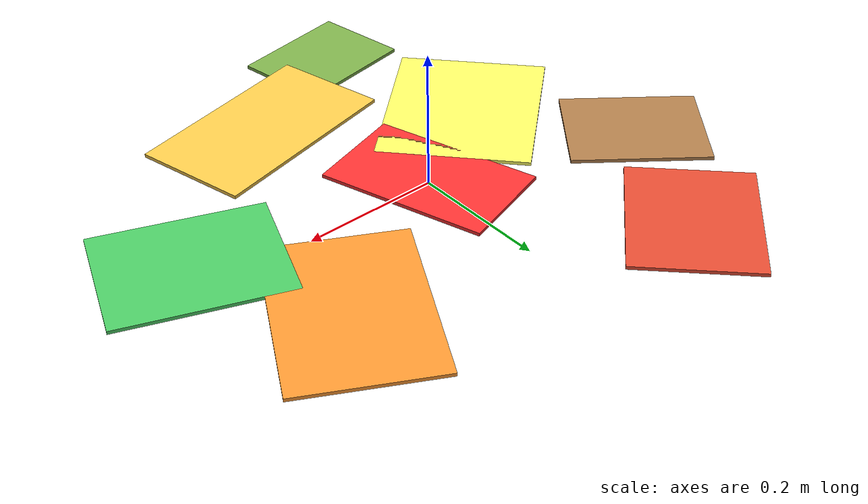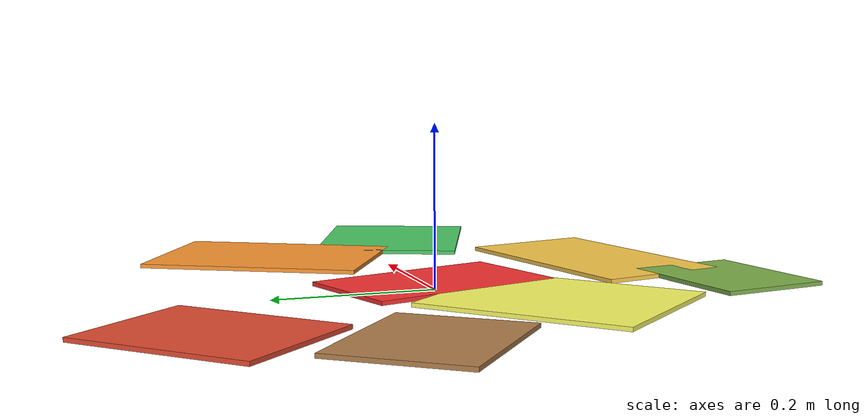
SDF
<?xml version="1.0" ?>
<sdf version="1.8">
  <model name="autumn_leaves">
    <static>true</static>

    <!-- Large, colorful autumn leaf cluster -->
    <link name="leaf_cluster">
      <pose>0 0 0.01 0 0 0</pose>

      <!-- Bright Red Dead Leaves -->
      <visual name="red_leaf_1">
        <pose>0 0 0 0 0 0.3</pose>
        <geometry>
          <box>
            <size>0.15 0.25 0.005</size>
          </box>
        </geometry>
        <material>
          <ambient>0.9 0.1 0.1 1</ambient>
          <diffuse>1.0 0.2 0.2 1</diffuse>
          <specular>0.2 0.1 0.1 1</specular>
        </material>
      </visual>
      <visual name="red_leaf_2">
        <pose>-0.2 0.3 0 0 0 -0.8</pose>
        <geometry>
          <box>
            <size>0.18 0.22 0.005</size>
          </box>
        </geometry>
        <material>
          <ambient>0.8 0.2 0.1 1</ambient>
          <diffuse>0.9 0.3 0.2 1</diffuse>
          <specular>0.2 0.1 0.1 1</specular>
        </material>
      </visual>

      <!-- Bright Orange Transitional Leaves -->
      <visual name="orange_leaf_1">
        <pose>0.25 0.15 0 0 0 -0.5</pose>
        <geometry>
          <box>
            <size>0.20 0.28 0.005</size>
          </box>
        </geometry>
        <material>
          <ambient>1.0 0.5 0.1 1</ambient>
          <diffuse>1.0 0.6 0.2 1</diffuse>
          <specular>0.3 0.2 0.1 1</specular>
        </material>
      </visual>
      <visual name="orange_leaf_2">
        <pose>0.1 -0.25 0 0 0 1.8</pose>
        <geometry>
          <box>
            <size>0.17 0.30 0.005</size>
          </box>
        </geometry>
        <material>
          <ambient>1.0 0.7 0.2 1</ambient>
          <diffuse>1.0 0.8 0.3 1</diffuse>
          <specular>0.3 0.2 0.1 1</specular>
        </material>
      </visual>

      <!-- Yellow Autumn Leaves -->
      <visual name="yellow_leaf_1">
        <pose>-0.15 -0.1 0 0 0 2.3</pose>
        <geometry>
          <box>
            <size>0.22 0.26 0.005</size>
          </box>
        </geometry>
        <material>
          <ambient>1.0 0.9 0.2 1</ambient>
          <diffuse>1.0 1.0 0.4 1</diffuse>
          <specular>0.3 0.3 0.1 1</specular>
        </material>
      </visual>

      <!-- Brown Dead Leaves -->
      <visual name="brown_leaf_1">
        <pose>-0.3 0.1 0 0 0 0.9</pose>
        <geometry>
          <box>
            <size>0.16 0.20 0.005</size>
          </box>
        </geometry>
        <material>
          <ambient>0.6 0.4 0.2 1</ambient>
          <diffuse>0.7 0.5 0.3 1</diffuse>
          <specular>0.2 0.1 0.1 1</specular>
        </material>
      </visual>

      <!-- Green Fresh Leaves (still some life) -->
      <visual name="green_leaf_1">
        <pose>0.35 -0.05 0 0 0 1.2</pose>
        <geometry>
          <box>
            <size>0.19 0.24 0.005</size>
          </box>
        </geometry>
        <material>
          <ambient>0.2 0.7 0.3 1</ambient>
          <diffuse>0.3 0.8 0.4 1</diffuse>
          <specular>0.1 0.3 0.1 1</specular>
        </material>
      </visual>
      <visual name="green_leaf_2">
        <pose>-0.08 -0.35 0 0 0 -1.4</pose>
        <geometry>
          <box>
            <size>0.14 0.18 0.005</size>
          </box>
        </geometry>
        <material>
          <ambient>0.4 0.6 0.2 1</ambient>
          <diffuse>0.5 0.7 0.3 1</diffuse>
          <specular>0.1 0.2 0.1 1</specular>
        </material>
      </visual>

    </link>
  </model>
</sdf>
